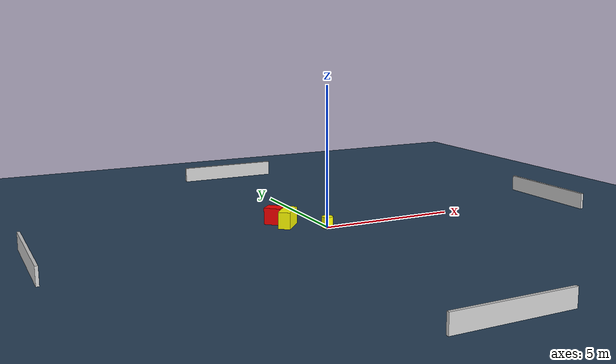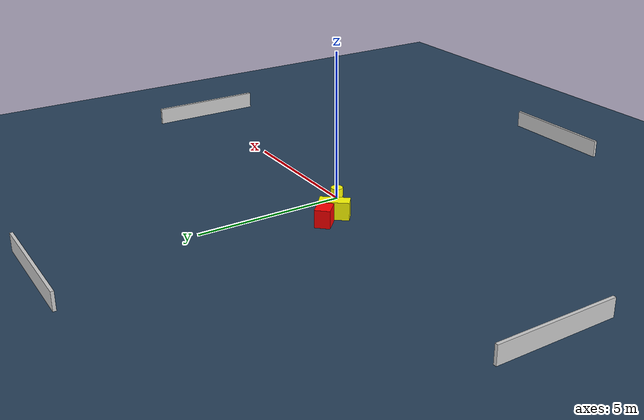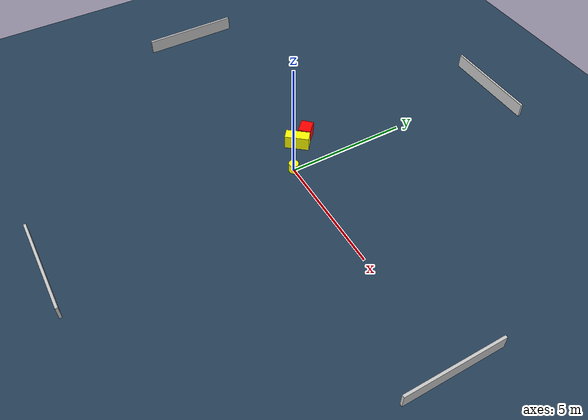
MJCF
<?xml version="1.0" ?>
<mujoco model="generated_environment">
  <option timestep="0.01" integrator="RK4" cone="elliptic"/>
  <default>
    <geom density="1"/>
  </default>
  <asset>
    <texture builtin="gradient" height="3072" name="skybox" rgb1="0.3 0.5 0.7" rgb2="0 0 0" type="skybox" width="512"/>
    <texture builtin="checker" height="300" name="groundplane" rgb1="0.2 0.3 0.4" rgb2="0.1 0.2 0.3" type="2d" width="300"/>
    <material name="groundplane" reflectance="0.2" texrepeat="5 5" texture="groundplane"/>
  </asset>
  <worldbody>
    <light dir="0 0 -1" directional="true" pos="0 0 1.5"/>
    <geom condim="3" friction="0.5 0.005 0.001" material="groundplane" name="floor" pos="0 0 0" size="0 0 0.05" type="plane"/>
    <body name="walls">
      <geom name="wall_1" condim="4" pos="-10.0 0.0 0.3" rgba="0.800000011920929 0.800000011920929 0.800000011920929 1.0" size="0.05 2.0 0.3" type="box"/>
      <geom name="wall_2" condim="4" pos="10.0 0.0 0.3" rgba="0.800000011920929 0.800000011920929 0.800000011920929 1.0" size="0.05 2.0 0.3" type="box"/>
      <geom name="wall_3" condim="4" pos="0.0 -10.0 0.3" rgba="0.800000011920929 0.800000011920929 0.800000011920929 1.0" size="2.0 0.05 0.3" type="box"/>
      <geom name="wall_4" condim="4" pos="0.0 10.0 0.3" rgba="0.800000011920929 0.800000011920929 0.800000011920929 1.0" size="2.0 0.05 0.3" type="box"/>
    </body>
    <body name="robot">
      <joint name="joint_x" type="slide" pos="0 0 0" axis="1 0 0"/>
      <joint name="joint_y" type="slide" pos="0 0 0" axis="0 1 0"/>
      <geom name="robot" type="cylinder" pos="0.0 0.0 0.2" size="0.2 0.2 0.0" mass="5.0" friction="1.0 0.005 0.0001" condim="4" rgba="1.0 1.0 0.0 1.0"/>
    </body>
    <body name="obstacle_1_movable">
      <geom name="obstacle_1_movable" condim="4" pos="-1.1610128373753497 0.8329121520558314 0.3" euler="0 0 230.74604774116125" friction="0.0 0.005 0.001" rgba="1.0 1.0 0.0 1.0" size="0.4946400042035732 0.21674921337609776 0.3" type="box" mass="0.1"/>
      <joint type="free"/>
    </body>
    <body name="obstacle_2_static">
      <geom name="obstacle_2_static" condim="4" pos="-1.4294271129517953 1.3875910055772458 0.3" euler="0 0 45.64529463779471" friction="0.0 0.005 0.001" rgba="1.0 0.0 0.0 1.0" size="0.2531214158119612 0.3024720628253623 0.3" type="box"/>
    </body>
  </worldbody>
  <actuator>
    <motor name="actuator_x" joint="joint_x" gear="1" ctrlrange="-1 1"/>
    <motor name="actuator_y" joint="joint_y" gear="1" ctrlrange="-1 1"/>
  </actuator>
</mujoco>
